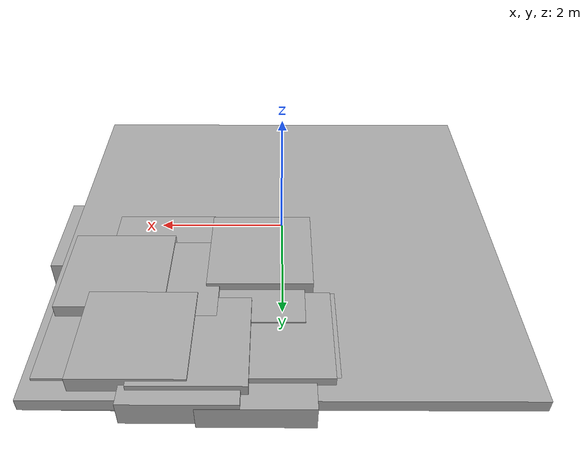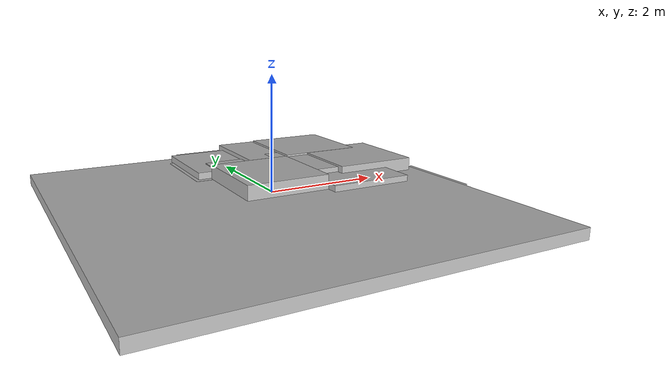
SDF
<sdf version="1.6">
  <world name="generated_world">
    <model name="b0">
      <static>true</static>
      <pose>2.9198446528463995 0.044595412714596216 -0.3530733952504832 0 0 0</pose>
      <link name="link">
        <collision name="collision">
          <geometry>
            <box>
              <size>1.6 1.6 0.4</size>
            </box>
          </geometry>
        </collision>
        <visual name="visual">
          <geometry>
            <box>
              <size>1.6 1.6 0.4</size>
            </box>
          </geometry>
        </visual>
      </link>
    </model>
    <model name="b1">
      <static>true</static>
      <pose>0.3437444065252311 2.859708306822244 -0.2559829176660291 0 0 0</pose>
      <link name="link">
        <collision name="collision">
          <geometry>
            <box>
              <size>1.6 1.6 0.4</size>
            </box>
          </geometry>
        </collision>
        <visual name="visual">
          <geometry>
            <box>
              <size>1.6 1.6 0.4</size>
            </box>
          </geometry>
        </visual>
      </link>
    </model>
    <model name="b2">
      <static>true</static>
      <pose>0.009470911511224589 2.3257676755457384 -0.29742894554308585 0 0 0</pose>
      <link name="link">
        <collision name="collision">
          <geometry>
            <box>
              <size>1.6 1.6 0.4</size>
            </box>
          </geometry>
        </collision>
        <visual name="visual">
          <geometry>
            <box>
              <size>1.6 1.6 0.4</size>
            </box>
          </geometry>
        </visual>
      </link>
    </model>
    <model name="b3">
      <static>true</static>
      <pose>0.3056037398044754 2.0085735473332025 -0.38374306542920655 0 0 0</pose>
      <link name="link">
        <collision name="collision">
          <geometry>
            <box>
              <size>1.6 1.6 0.4</size>
            </box>
          </geometry>
        </collision>
        <visual name="visual">
          <geometry>
            <box>
              <size>1.6 1.6 0.4</size>
            </box>
          </geometry>
        </visual>
      </link>
    </model>
    <model name="b4">
      <static>true</static>
      <pose>1.3570215703031918 0.6551299870508762 -0.39130564884509844 0 0 0</pose>
      <link name="link">
        <collision name="collision">
          <geometry>
            <box>
              <size>1.6 1.6 0.4</size>
            </box>
          </geometry>
        </collision>
        <visual name="visual">
          <geometry>
            <box>
              <size>1.6 1.6 0.4</size>
            </box>
          </geometry>
        </visual>
      </link>
    </model>
    <model name="b5">
      <static>true</static>
      <pose>2.2018405382808064 2.549316609615889 -0.32957463082945354 0 0 0</pose>
      <link name="link">
        <collision name="collision">
          <geometry>
            <box>
              <size>1.6 1.6 0.4</size>
            </box>
          </geometry>
        </collision>
        <visual name="visual">
          <geometry>
            <box>
              <size>1.6 1.6 0.4</size>
            </box>
          </geometry>
        </visual>
      </link>
    </model>
    <model name="b6">
      <static>true</static>
      <pose>0.08689125242726159 2.440709908972386 -0.16648380603579632 0 0 0</pose>
      <link name="link">
        <collision name="collision">
          <geometry>
            <box>
              <size>1.6 1.6 0.4</size>
            </box>
          </geometry>
        </collision>
        <visual name="visual">
          <geometry>
            <box>
              <size>1.6 1.6 0.4</size>
            </box>
          </geometry>
        </visual>
      </link>
    </model>
    <model name="b7">
      <static>true</static>
      <pose>2.0447906103711375 1.746361009070767 -0.17677283910993122 0 0 0</pose>
      <link name="link">
        <collision name="collision">
          <geometry>
            <box>
              <size>1.6 1.6 0.4</size>
            </box>
          </geometry>
        </collision>
        <visual name="visual">
          <geometry>
            <box>
              <size>1.6 1.6 0.4</size>
            </box>
          </geometry>
        </visual>
      </link>
    </model>
    <model name="b8">
      <static>true</static>
      <pose>1.3492235637382806 2.8579278243177724 -0.1666955650505796 0 0 0</pose>
      <link name="link">
        <collision name="collision">
          <geometry>
            <box>
              <size>1.6 1.6 0.4</size>
            </box>
          </geometry>
        </collision>
        <visual name="visual">
          <geometry>
            <box>
              <size>1.6 1.6 0.4</size>
            </box>
          </geometry>
        </visual>
      </link>
    </model>
    <model name="b9">
      <static>true</static>
      <pose>1.2467361692931098 2.6281268940805753 -0.0854821543198897 0 0 0</pose>
      <link name="link">
        <collision name="collision">
          <geometry>
            <box>
              <size>1.6 1.6 0.4</size>
            </box>
          </geometry>
        </collision>
        <visual name="visual">
          <geometry>
            <box>
              <size>1.6 1.6 0.4</size>
            </box>
          </geometry>
        </visual>
      </link>
    </model>
    <model name="b10">
      <static>true</static>
      <pose>0.46445383357174086 1.4526402078700298 -0.1510339089088705 0 0 0</pose>
      <link name="link">
        <collision name="collision">
          <geometry>
            <box>
              <size>1.6 1.6 0.4</size>
            </box>
          </geometry>
        </collision>
        <visual name="visual">
          <geometry>
            <box>
              <size>1.6 1.6 0.4</size>
            </box>
          </geometry>
        </visual>
      </link>
    </model>
    <model name="b11">
      <static>true</static>
      <pose>1.9354704065775996 0.5771837391514927 -0.1831617376511833 0 0 0</pose>
      <link name="link">
        <collision name="collision">
          <geometry>
            <box>
              <size>1.6 1.6 0.4</size>
            </box>
          </geometry>
        </collision>
        <visual name="visual">
          <geometry>
            <box>
              <size>1.6 1.6 0.4</size>
            </box>
          </geometry>
        </visual>
      </link>
    </model>
    <model name="b12">
      <static>true</static>
      <pose>1.4906402197104658 2.196634736192385 -0.24854929498037914 0 0 0</pose>
      <link name="link">
        <collision name="collision">
          <geometry>
            <box>
              <size>1.6 1.6 0.4</size>
            </box>
          </geometry>
        </collision>
        <visual name="visual">
          <geometry>
            <box>
              <size>1.6 1.6 0.4</size>
            </box>
          </geometry>
        </visual>
      </link>
    </model>
    <model name="b13">
      <static>true</static>
      <pose>1.7389379674596541 1.386071114609333 -0.08434413910186522 0 0 0</pose>
      <link name="link">
        <collision name="collision">
          <geometry>
            <box>
              <size>1.6 1.6 0.4</size>
            </box>
          </geometry>
        </collision>
        <visual name="visual">
          <geometry>
            <box>
              <size>1.6 1.6 0.4</size>
            </box>
          </geometry>
        </visual>
      </link>
    </model>
    <model name="b14">
      <static>true</static>
      <pose>2.04437704519491 2.5482643236268223 -0.048242881736030474 0 0 0</pose>
      <link name="link">
        <collision name="collision">
          <geometry>
            <box>
              <size>1.6 1.6 0.4</size>
            </box>
          </geometry>
        </collision>
        <visual name="visual">
          <geometry>
            <box>
              <size>1.6 1.6 0.4</size>
            </box>
          </geometry>
        </visual>
      </link>
    </model>
    <model name="b15">
      <static>true</static>
      <pose>0.3323062471987107 0.7908025375218785 -0.024201343362013572 0 0 0</pose>
      <link name="link">
        <collision name="collision">
          <geometry>
            <box>
              <size>1.6 1.6 0.4</size>
            </box>
          </geometry>
        </collision>
        <visual name="visual">
          <geometry>
            <box>
              <size>1.6 1.6 0.4</size>
            </box>
          </geometry>
        </visual>
      </link>
    </model>
    <model name="b16">
      <static>true</static>
      <pose>1.1211307381555025 2.6342842531097967 -0.2826016378844072 0 0 0</pose>
      <link name="link">
        <collision name="collision">
          <geometry>
            <box>
              <size>1.6 1.6 0.4</size>
            </box>
          </geometry>
        </collision>
        <visual name="visual">
          <geometry>
            <box>
              <size>1.6 1.6 0.4</size>
            </box>
          </geometry>
        </visual>
      </link>
    </model>
    <model name="b17">
      <static>true</static>
      <pose>2.5662246964038755 2.379822464898603 -0.2518569861536274 0 0 0</pose>
      <link name="link">
        <collision name="collision">
          <geometry>
            <box>
              <size>1.6 1.6 0.4</size>
            </box>
          </geometry>
        </collision>
        <visual name="visual">
          <geometry>
            <box>
              <size>1.6 1.6 0.4</size>
            </box>
          </geometry>
        </visual>
      </link>
    </model>
    <model name="b18">
      <static>true</static>
      <pose>0.3605773590727652 1.021672388427503 -0.3252009932623333 0 0 0</pose>
      <link name="link">
        <collision name="collision">
          <geometry>
            <box>
              <size>1.6 1.6 0.4</size>
            </box>
          </geometry>
        </collision>
        <visual name="visual">
          <geometry>
            <box>
              <size>1.6 1.6 0.4</size>
            </box>
          </geometry>
        </visual>
      </link>
    </model>
    <model name="b19">
      <static>true</static>
      <pose>2.516243162630643 1.2465385396148325 -0.05136377699402028 0 0 0</pose>
      <link name="link">
        <collision name="collision">
          <geometry>
            <box>
              <size>1.6 1.6 0.4</size>
            </box>
          </geometry>
        </collision>
        <visual name="visual">
          <geometry>
            <box>
              <size>1.6 1.6 0.4</size>
            </box>
          </geometry>
        </visual>
      </link>
    </model>
    <model name="floorDONT_VISUALIZE">
      <static>true</static>
      <pose>0 0 -0.2 0 0 0</pose>
      <link name="link">
        <collision name="collision">
          <geometry>
            <box>
              <size>7 7 0.2</size>
            </box>
          </geometry>
        </collision>
        <visual name="visual">
          <geometry>
            <box>
              <size>7 7 0.2</size>
            </box>
          </geometry>
        </visual>
      </link>
    </model>
  </world>
</sdf>
